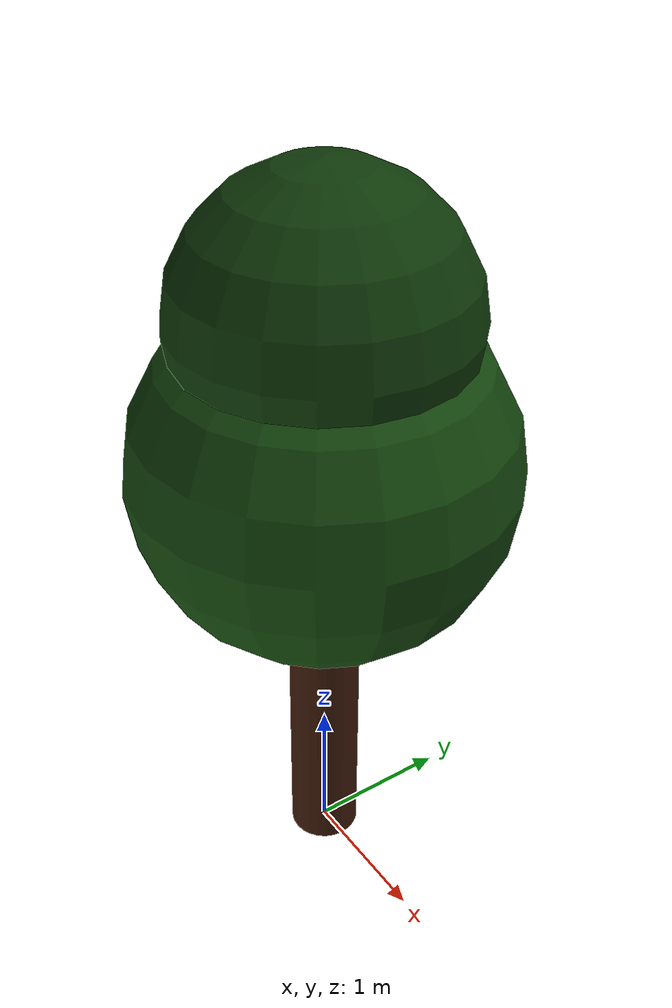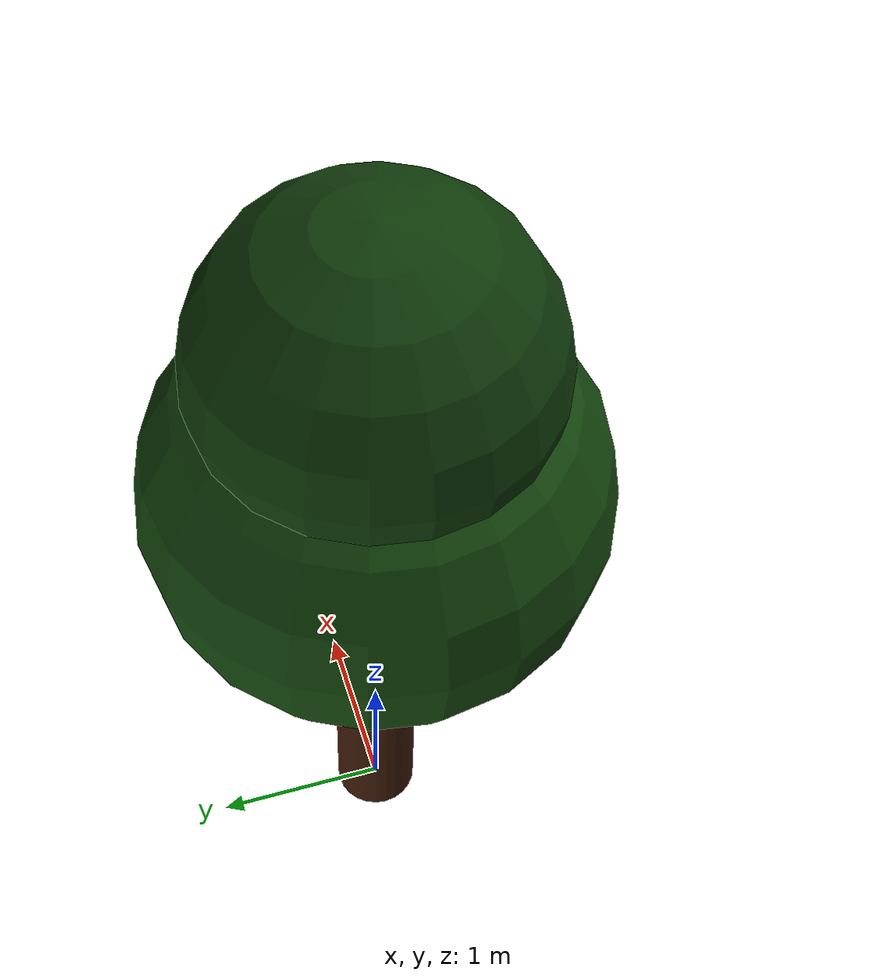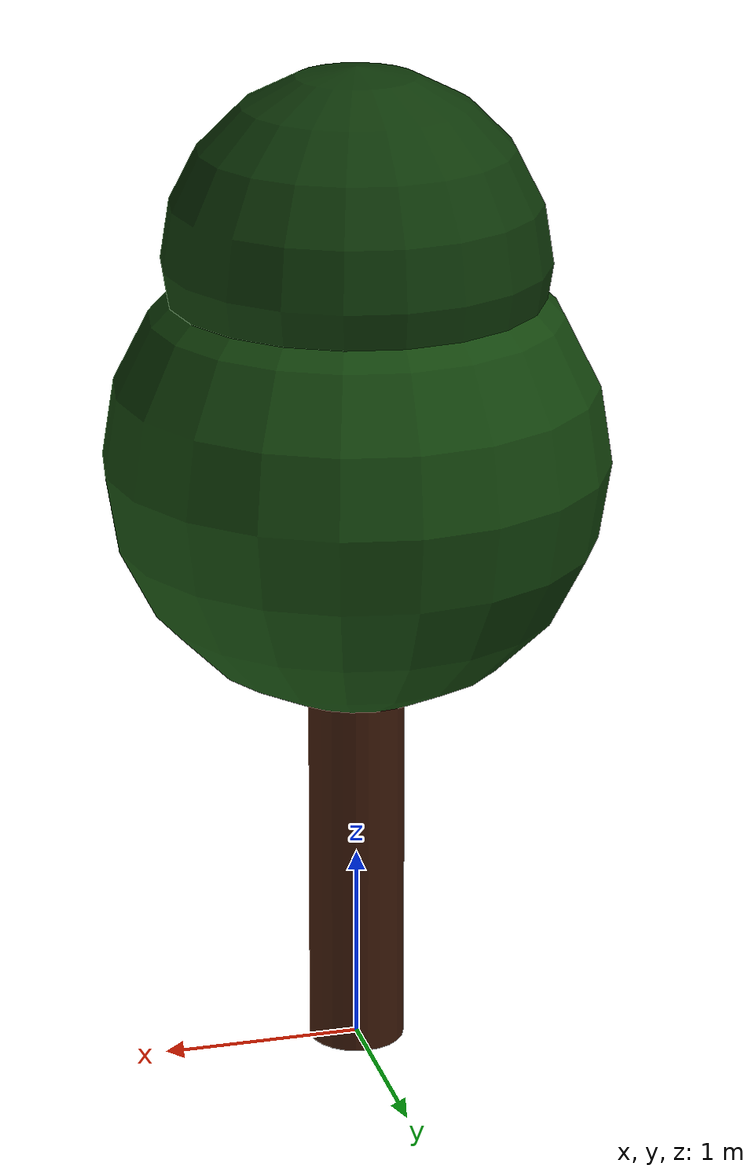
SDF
<?xml version="1.0"?>
<sdf version="1.10"><model name="tree"><static>true</static><link name="tree">
  <collision name="trunk_collision"><pose>0 0 1.5 0 0 0</pose><geometry><cylinder><radius>0.24</radius><length>3</length></cylinder></geometry></collision>
  <visual name="trunk"><pose>0 0 1.5 0 0 0</pose><geometry><cylinder><radius>0.24</radius><length>3</length></cylinder></geometry><material><diffuse>0.24 0.10 0.035 1</diffuse></material></visual>
  <visual name="crown_low"><pose>0 0 3.1 0 0 0</pose><geometry><sphere><radius>1.25</radius></sphere></geometry><material><diffuse>0.08 0.28 0.055 1</diffuse></material></visual>
  <visual name="crown_high"><pose>0 0 4.1 0 0 0</pose><geometry><sphere><radius>0.95</radius></sphere></geometry><material><diffuse>0.06 0.23 0.04 1</diffuse></material></visual>
</link></model></sdf>
